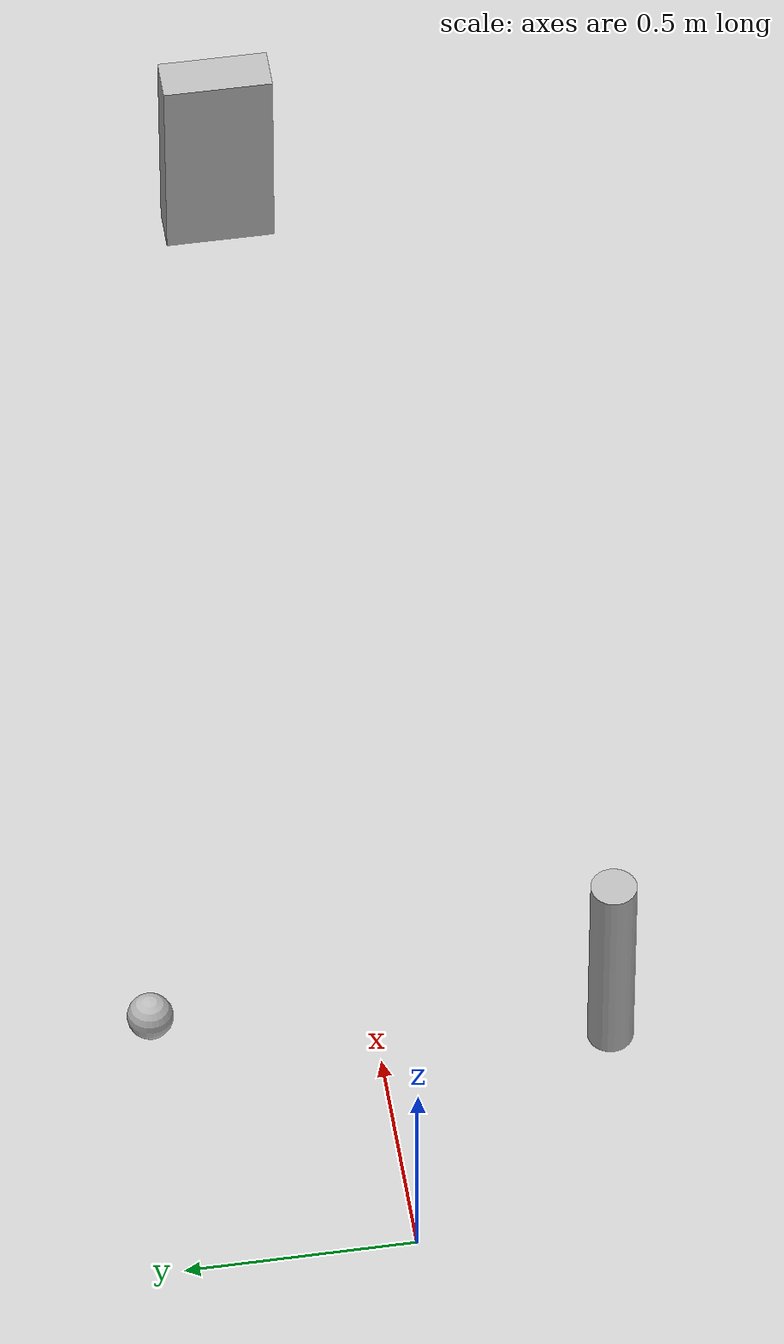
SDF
<?xml version="1.0" encoding="UTF-8"?>
<sdf version="1.6">
  <world name="simbot_world">
    <gravity>0 0 -9.8</gravity>

    <include>
      <uri>model://sun</uri>
    </include>

    <include>
      <uri>model://ground_plane</uri>
    </include>

    <link name='world'/>
    <link name='map'/>
    <joint name='fixed_odom' type='fixed'>
      <parent link='world'/>
      <child link='map'/>
    </joint>

    <model name="box">
      <pose>3.0 0.0 0.25 0.0 0.0 0.0</pose>
      <link name="world_link">
        <visual name="visual">
          <geometry>
            <box>
              <size>0.1 0.25 0.5</size>
            </box>
          </geometry>
        </visual>
        <collision name="collision">
          <geometry>
            <box>
              <size>0.1 0.25 0.5</size>
            </box>
          </geometry>
          <laser_retro>100.0</laser_retro>
        </collision>
      </link>
    </model>

    <model name="sphere">
      <pose>0.5 0.5 0.25 0.0 0.0 0.0</pose>
      <link name="world_link">
        <visual name="visual">
          <geometry>
            <sphere>
              <radius>0.05</radius>
            </sphere>
          </geometry>
        </visual>
        <collision name="collision">
          <geometry>
            <sphere>
              <radius>0.05</radius>
            </sphere>
          </geometry>
          <laser_retro>80.0</laser_retro>
        </collision>
      </link>
    </model>

    <model name="cylinder">
      <pose>0.5 -0.5 0.25 0.0 0.0 0.0</pose>
      <link name="world_link">
        <visual name="visual">
          <geometry>
            <cylinder>
              <radius>0.05</radius>
              <length>0.5</length>
            </cylinder>
          </geometry>
        </visual>
        <collision name="collision">
          <geometry>
            <cylinder>
              <radius>0.05</radius>
              <length>0.5</length>
            </cylinder>
          </geometry>
          <laser_retro>60.0</laser_retro>
        </collision>
      </link>
    </model>

  </world>
</sdf>
